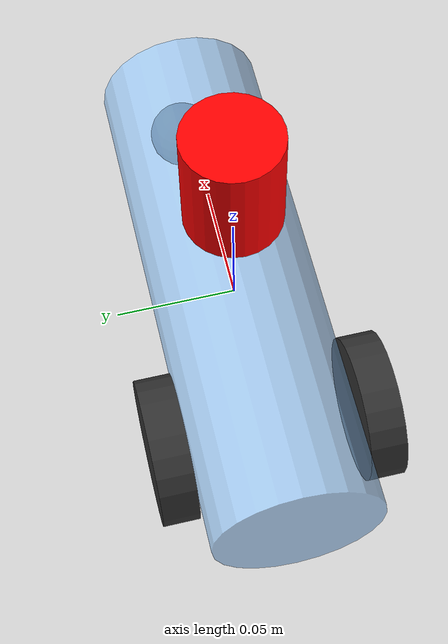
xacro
<?xml version="1.0"?>
<robot name="bottle_car" xmlns:xacro="http://www.ros.org/wiki/xacro">

    <!-- ================= Properties ================= -->
    <xacro:property name="bottle_length" value="0.22"/>
    <xacro:property name="bottle_radius" value="0.035"/>
    <xacro:property name="bottle_mass" value="0.5"/>
    <xacro:property name="wheel_radius" value="0.03"/>
    <xacro:property name="wheel_thickness" value="0.015"/>
    <xacro:property name="wheel_mass" value="0.1"/>
    <xacro:property name="caster_radius" value="0.015"/>
    <xacro:property name="caster_mass" value="0.05"/>

    <!-- ================= Base Link ================= -->
    <link name="base_link">
        <inertial>
            <mass value="${bottle_mass}"/>
            <inertia ixx="0.001" ixy="0" ixz="0" iyy="0.001" iyz="0" izz="0.001"/>
        </inertial>
        <visual>
            <origin xyz="0 0 0" rpy="0 ${pi/2} 0"/>
            <geometry><cylinder radius="${bottle_radius}" length="${bottle_length}"/></geometry>
            <material name="bottle_material"><color rgba="0.6 0.8 1.0 0.7"/></material>
        </visual>
        <collision>
            <origin xyz="0 0 0" rpy="0 ${pi/2} 0"/>
            <geometry><cylinder radius="${bottle_radius}" length="${bottle_length}"/></geometry>
        </collision>
    </link>

    <!-- ================= Wheels ================= -->
    <xacro:macro name="wheel_link" params="prefix">
        <link name="${prefix}_wheel_link">
            <inertial>
                <mass value="${wheel_mass}"/>
                <inertia ixx="0.0001" ixy="0" ixz="0" iyy="0.0001" iyz="0" izz="0.0001"/>
            </inertial>
            <visual>
                <origin xyz="0 0 0" rpy="${pi/2} 0 0"/>
                <geometry><cylinder radius="${wheel_radius}" length="${wheel_thickness}"/></geometry>
                <material name="wheel_material"><color rgba="0.2 0.2 0.2 1.0"/></material>
            </visual>
            <collision>
                <origin xyz="0 0 0" rpy="${pi/2} 0 0"/>
                <geometry><cylinder radius="${wheel_radius}" length="${wheel_thickness}"/></geometry>
            </collision>
        </link>
    </xacro:macro>

    <xacro:wheel_link prefix="rear_left"/>
    <xacro:wheel_link prefix="rear_right"/>

    <!-- ================= Caster ================= -->
    <link name="caster_link">
        <inertial>
            <mass value="${caster_mass}"/>
            <inertia ixx="0.00005" ixy="0" ixz="0" iyy="0.00005" iyz="0" izz="0.00005"/>
        </inertial>
        <visual>
            <geometry><sphere radius="${caster_radius}"/></geometry>
            <material name="caster_material"><color rgba="0.1 0.1 0.1 1.0"/></material>
        </visual>
        <collision>
            <geometry><sphere radius="${caster_radius}"/></geometry>
        </collision>
    </link>

    <!-- ================= LiDAR ================= -->
    <link name="lidar_link">
        <inertial>
            <mass value="0.05"/>
            <inertia ixx="0.0001" ixy="0" ixz="0" iyy="0.0001" iyz="0" izz="0.0001"/>
        </inertial>
        <visual>
            <origin xyz="0 0 0" rpy="0 0 0"/>
            <geometry><cylinder radius="0.02" length="0.05"/></geometry>
            <material name="lidar_material"><color rgba="1 0 0 1"/></material>
        </visual>
        <collision>
            <origin xyz="0 0 0" rpy="0 0 0"/>
            <geometry><cylinder radius="0.02" length="0.05"/></geometry>
        </collision>
    </link>

    <!-- ================= Joints ================= -->
    <joint name="rear_left_wheel_joint" type="continuous">
        <parent link="base_link"/>
        <child link="rear_left_wheel_link"/>
        <origin xyz="-${bottle_length/2 - 0.05} ${bottle_radius + wheel_thickness/2} -0.01" rpy="0 0 0"/>
        <axis xyz="0 1 0"/>
    </joint>

    <joint name="rear_right_wheel_joint" type="continuous">
        <parent link="base_link"/>
        <child link="rear_right_wheel_link"/>
        <origin xyz="-${bottle_length/2 - 0.05} -${bottle_radius + wheel_thickness/2} -0.01" rpy="0 0 0"/>
        <axis xyz="0 1 0"/>
    </joint>

    <joint name="caster_joint" type="fixed">
        <parent link="base_link"/>
        <child link="caster_link"/>
        <origin xyz="${bottle_length/2} 0 -${bottle_radius}" rpy="0 0 0"/>
    </joint>

    <joint name="lidar_joint" type="fixed">
        <parent link="base_link"/>
        <child link="lidar_link"/>
        <origin xyz="0 0 ${bottle_radius + 0.05}" rpy="0 0 0"/>
    </joint>

    <!-- ================= Gazebo Materials ================= -->
    <gazebo reference="rear_left_wheel_link"><mu1>1.0</mu1><mu2>1.0</mu2><material>Gazebo/Black</material></gazebo>
    <gazebo reference="rear_right_wheel_link"><mu1>1.0</mu1><mu2>1.0</mu2><material>Gazebo/Black</material></gazebo>
    <gazebo reference="caster_link"><mu1>0.0</mu1><mu2>0.0</mu2><material>Gazebo/Black</material></gazebo>

    <!-- ================= Differential Drive ================= -->
    <gazebo>
        <plugin name="differential_drive_controller" filename="libgazebo_ros_diff_drive.so">
            <rosDebugLevel>info</rosDebugLevel>
            <leftJoint>rear_left_wheel_joint</leftJoint>
            <rightJoint>rear_right_wheel_joint</rightJoint>
            <wheelSeparation>0.1</wheelSeparation>
            <wheelDiameter>0.06</wheelDiameter>
            <torque>20</torque>
            <commandTopic>cmd_vel</commandTopic>
            <odometryTopic>odom</odometryTopic>
            <odometryFrame>odom</odometryFrame>
            <robotBaseFrame>base_link</robotBaseFrame>
            <publishWheelTF>true</publishWheelTF>
            <publishOdomTF>true</publishOdomTF>
            <publishWheelJointState>true</publishWheelJointState>
        </plugin>
    </gazebo>

    <!-- ================= LiDAR Sensor Plugin ================= -->
    <gazebo reference="lidar_link">
        <sensor type="ray" name="lidar_sensor">
            <pose>0 0 0 0 0 0</pose>
            <visualize>true</visualize>
            <update_rate>10</update_rate>
            <ray>
                <scan>
                    <horizontal>
                        <samples>360</samples>
                        <resolution>1</resolution>
                        <min_angle>-1.5708</min_angle>
                        <max_angle>1.5708</max_angle>
                    </horizontal>
                </scan>
                <range>
                    <min>0.05</min>
                    <max>10.0</max>
                    <resolution>0.01</resolution>
                </range>
            </ray>
            <plugin name="gazebo_ros_laser" filename="libgazebo_ros_laser.so">
                <topicName>/scan</topicName>
                <frameName>lidar_link</frameName>
            </plugin>
        </sensor>
    </gazebo>

</robot>
